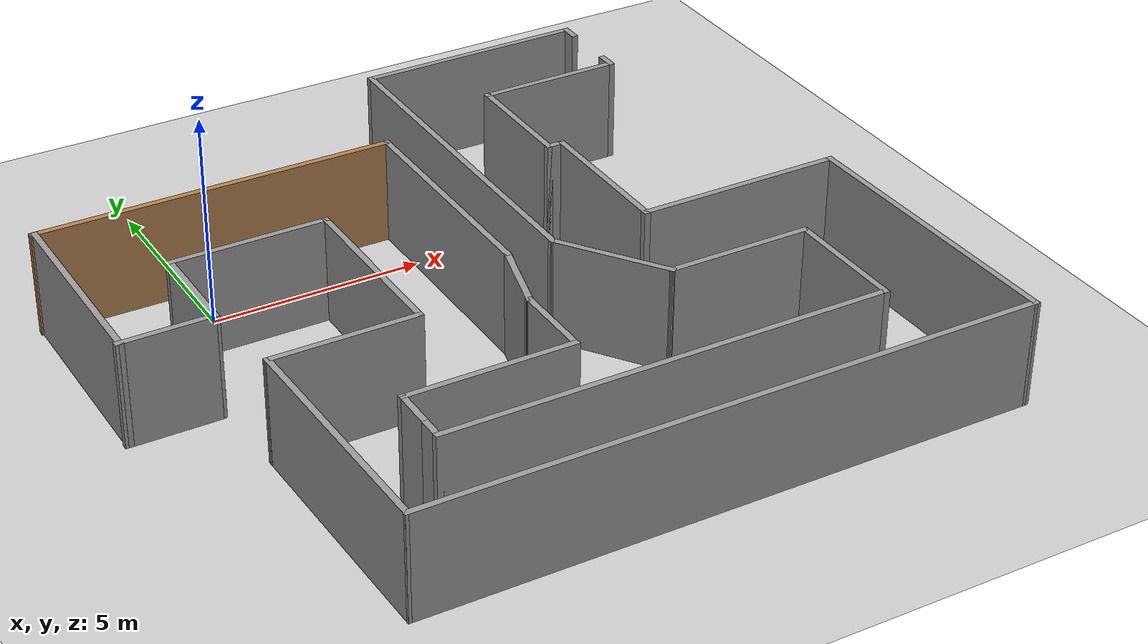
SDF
<sdf version="1.7">
 <world name="default">
  <light name="sun" type="directional">
   <pose>0 0 10 0 -0 0</pose>
   <diffuse>0.8 0.8 0.8 1</diffuse>
   <specular>0.2 0.2 0.2 1</specular>
   <attenuation>
    <range>1000</range>
    <constant>0.9</constant>
    <linear>0.01</linear>
    <quadratic>0.001</quadratic>
   </attenuation>
   <direction>-0.5 0.1 -0.9</direction>
   <spot><inner_angle>0</inner_angle><outer_angle>0</outer_angle><falloff>0</falloff></spot>
  </light>
  <model name="ground_plane">
   <static>1</static>
   <link name="link">
    <collision name="collision">
     <geometry><plane><normal>0 0 1</normal><size>100 100</size></plane></geometry>
     <surface>
      <contact><collide_bitmask>65535</collide_bitmask></contact>
      <friction><ode><mu>100</mu><mu2>50</mu2></ode></friction>
     </surface>
    </collision>
    <visual name="visual">
     <cast_shadows>0</cast_shadows>
     <geometry><plane><normal>0 0 1</normal><size>100 100</size></plane></geometry>
     <material>
      <script><uri>file://media/materials/scripts/gazebo.material</uri><name>Gazebo/Grey</name></script>
     </material>
    </visual>
   </link>
  </model>
  <gravity>0 0 -9.8</gravity>
  <magnetic_field>6e-06 2.3e-05 -4.2e-05</magnetic_field>
  <atmosphere type="adiabatic"/>
  <physics type="ode">
   <max_step_size>0.001</max_step_size>
   <real_time_factor>1</real_time_factor>
   <real_time_update_rate>1000</real_time_update_rate>
  </physics>
  <scene><ambient>0.4 0.4 0.4 1</ambient><background>0.7 0.7 0.7 1</background><shadows>1</shadows></scene>
  <spherical_coordinates>
   <surface_model>EARTH_WGS84</surface_model>
   <latitude_deg>0</latitude_deg>
   <longitude_deg>0</longitude_deg>
   <elevation>0</elevation>
   <heading_deg>0</heading_deg>
  </spherical_coordinates>
  <model name="laberynth1">
   <pose>5.01023 -3.41128 0 0 -0 0</pose>
   <link name="Wall_1">
    <collision name="Wall_1_Collision">
     <geometry><box><size>2.5 0.15 2.5</size></box></geometry>
     <pose>0 0 1.25 0 -0 0</pose>
    </collision>
    <visual name="Wall_1_Visual">
     <pose>0 0 1.25 0 -0 0</pose>
     <geometry><box><size>2.5 0.15 2.5</size></box></geometry>
     <material>
      <script><uri>file://media/materials/scripts/gazebo.material</uri><name>Gazebo/Grey</name></script>
      <ambient>1 1 1 1</ambient>
     </material>
     <meta><layer>0</layer></meta>
    </visual>
    <pose>-6.31022 1.14628 0 0 -0 1.5708</pose>
   </link>
   <link name="Wall_10">
    <collision name="Wall_10_Collision">
     <geometry><box><size>0.5 0.15 2.5</size></box></geometry>
     <pose>0 0 1.25 0 -0 0</pose>
    </collision>
    <visual name="Wall_10_Visual">
     <pose>0 0 1.25 0 -0 0</pose>
     <geometry><box><size>0.5 0.15 2.5</size></box></geometry>
     <material>
      <script><uri>file://media/materials/scripts/gazebo.material</uri><name>Gazebo/Grey</name></script>
      <ambient>1 1 1 1</ambient>
     </material>
     <meta><layer>0</layer></meta>
    </visual>
    <pose>3.26477 2.82129 0 0 -0 3.14159</pose>
   </link>
   <link name="Wall_11">
    <collision name="Wall_11_Collision">
     <geometry><box><size>3 0.15 2.5</size></box></geometry>
     <pose>0 0 1.25 0 -0 0</pose>
    </collision>
    <visual name="Wall_11_Visual">
     <pose>0 0 1.25 0 -0 0</pose>
     <geometry><box><size>3 0.15 2.5</size></box></geometry>
     <material>
      <script><uri>file://media/materials/scripts/gazebo.material</uri><name>Gazebo/Grey</name></script>
      <ambient>1 1 1 1</ambient>
     </material>
     <meta><layer>0</layer></meta>
    </visual>
    <pose>3.08977 4.24629 0 0 -0 1.5708</pose>
   </link>
   <link name="Wall_12">
    <collision name="Wall_12_Collision">
     <geometry><box><size>3.5 0.15 2.5</size></box></geometry>
     <pose>0 0 1.25 0 -0 0</pose>
    </collision>
    <visual name="Wall_12_Visual">
     <pose>0 0 1.25 0 -0 0</pose>
     <geometry><box><size>3.5 0.15 2.5</size></box></geometry>
     <material>
      <script><uri>file://media/materials/scripts/gazebo.material</uri><name>Gazebo/Grey</name></script>
      <ambient>1 1 1 1</ambient>
     </material>
     <meta><layer>0</layer></meta>
    </visual>
    <pose>4.76477 5.67129 0 0 -0 0</pose>
   </link>
   <link name="Wall_14">
    <collision name="Wall_14_Collision">
     <geometry><box><size>5.5 0.15 2.5</size></box></geometry>
     <pose>0 0 1.25 0 -0 0</pose>
    </collision>
    <visual name="Wall_14_Visual">
     <pose>0 0 1.25 0 -0 0</pose>
     <geometry><box><size>5.5 0.15 2.5</size></box></geometry>
     <material>
      <script><uri>file://media/materials/scripts/gazebo.material</uri><name>Gazebo/Grey</name></script>
      <ambient>1 1 1 1</ambient>
     </material>
     <meta><layer>0</layer></meta>
    </visual>
    <pose>3.76477 7.77128 0 0 -0 3.14159</pose>
   </link>
   <link name="Wall_15">
    <collision name="Wall_15_Collision">
     <geometry><box><size>8.75 0.15 2.5</size></box></geometry>
     <pose>0 0 1.25 0 -0 0</pose>
    </collision>
    <visual name="Wall_15_Visual">
     <pose>0 0 1.25 0 -0 0</pose>
     <geometry><box><size>8.75 0.15 2.5</size></box></geometry>
     <material>
      <script><uri>file://media/materials/scripts/gazebo.material</uri><name>Gazebo/Grey</name></script>
      <ambient>1 1 1 1</ambient>
     </material>
     <meta><layer>0</layer></meta>
    </visual>
    <pose>1.08977 3.47128 0 0 -0 -1.5708</pose>
   </link>
   <link name="Wall_17">
    <collision name="Wall_17_Collision">
     <geometry><box><size>5.75 0.15 2.5</size></box></geometry>
     <pose>0 0 1.25 0 -0 0</pose>
    </collision>
    <visual name="Wall_17_Visual">
     <pose>0 0 1.25 0 -0 0</pose>
     <geometry><box><size>5.75 0.15 2.5</size></box></geometry>
     <material>
      <script><uri>file://media/materials/scripts/gazebo.material</uri><name>Gazebo/Grey</name></script>
      <ambient>1 1 1 1</ambient>
     </material>
     <meta><layer>0</layer></meta>
    </visual>
    <pose>-0.010225 1.97128 0 0 -0 1.5708</pose>
   </link>
   <link name="Wall_18">
    <collision name="Wall_18_Collision">
     <geometry><box><size>8.55194 0.15 2.5</size></box></geometry>
     <pose>0 0 1.25 0 -0 0</pose>
    </collision>
    <visual name="Wall_18_Visual">
     <pose>0 0 1.25 0 -0 0</pose>
     <geometry><box><size>8.55194 0.15 2.5</size></box></geometry>
     <material>
      <script><uri>file://media/materials/scripts/gazebo.material</uri><name>Gazebo/Wood</name></script>
      <ambient>0.435294 0.796078 0.67451 1</ambient>
     </material>
     <meta><layer>0</layer></meta>
    </visual>
    <pose>-4.21115 4.79151 0 0 -0 3.13678</pose>
   </link>
   <link name="Wall_19">
    <collision name="Wall_19_Collision">
     <geometry><box><size>5 0.15 2.5</size></box></geometry>
     <pose>0 0 1.25 0 -0 0</pose>
    </collision>
    <visual name="Wall_19_Visual">
     <pose>0 0 1.25 0 -0 0</pose>
     <geometry><box><size>5 0.15 2.5</size></box></geometry>
     <material>
      <script><uri>file://media/materials/scripts/gazebo.material</uri><name>Gazebo/Grey</name></script>
      <ambient>1 1 1 1</ambient>
     </material>
     <meta><layer>0</layer></meta>
    </visual>
    <pose>-8.37162 2.38674 0 0 -0 -1.5708</pose>
   </link>
   <link name="Wall_2">
    <collision name="Wall_2_Collision">
     <geometry><box><size>3.75 0.15 2.5</size></box></geometry>
     <pose>0 0 1.25 0 -0 0</pose>
    </collision>
    <visual name="Wall_2_Visual">
     <pose>0 0 1.25 0 -0 0</pose>
     <geometry><box><size>3.75 0.15 2.5</size></box></geometry>
     <material>
      <script><uri>file://media/materials/scripts/gazebo.material</uri><name>Gazebo/Grey</name></script>
      <ambient>1 1 1 1</ambient>
     </material>
     <meta><layer>0</layer></meta>
    </visual>
    <pose>-4.51023 2.32129 0 0 -0 0</pose>
   </link>
   <link name="Wall_20">
    <collision name="Wall_20_Collision">
     <geometry><box><size>2.25187 0.15 2.5</size></box></geometry>
     <pose>0 0 1.25 0 -0 0</pose>
    </collision>
    <visual name="Wall_20_Visual">
     <pose>0 0 1.25 0 -0 0</pose>
     <geometry><box><size>2.25187 0.15 2.5</size></box></geometry>
     <material>
      <script><uri>file://media/materials/scripts/gazebo.material</uri><name>Gazebo/Grey</name></script>
      <ambient>1 1 1 1</ambient>
     </material>
     <meta><layer>0</layer></meta>
    </visual>
    <pose>-7.36115 -0.033487 0 0 -0 0.004541</pose>
   </link>
   <link name="Wall_22">
    <collision name="Wall_22_Collision">
     <geometry><box><size>2 0.15 2.5</size></box></geometry>
     <pose>0 0 1.25 0 -0 0</pose>
    </collision>
    <visual name="Wall_22_Visual">
     <pose>0 0 1.25 0 -0 0</pose>
     <geometry><box><size>2 0.15 2.5</size></box></geometry>
     <material>
      <script><uri>file://media/materials/scripts/gazebo.material</uri><name>Gazebo/Grey</name></script>
      <ambient>1 1 1 1</ambient>
     </material>
     <meta><layer>0</layer></meta>
    </visual>
    <pose>-0.249633 -1.7222 0 0 -0 -1.8326</pose>
   </link>
   <link name="Wall_24">
    <collision name="Wall_24_Collision">
     <geometry><box><size>2 0.15 2.5</size></box></geometry>
     <pose>0 0 1.25 0 -0 0</pose>
    </collision>
    <visual name="Wall_24_Visual">
     <pose>0 0 1.25 0 -0 0</pose>
     <geometry><box><size>2 0.15 2.5</size></box></geometry>
     <material>
      <script><uri>file://media/materials/scripts/gazebo.material</uri><name>Gazebo/Grey</name></script>
      <ambient>1 1 1 1</ambient>
     </material>
     <meta><layer>0</layer></meta>
    </visual>
    <pose>-0.48904 -3.54068 0 0 -0 -1.5708</pose>
   </link>
   <link name="Wall_25">
    <collision name="Wall_25_Collision">
     <geometry><box><size>4 0.15 2.5</size></box></geometry>
     <pose>0 0 1.25 0 -0 0</pose>
    </collision>
    <visual name="Wall_25_Visual">
     <pose>0 0 1.25 0 -0 0</pose>
     <geometry><box><size>4 0.15 2.5</size></box></geometry>
     <material>
      <script><uri>file://media/materials/scripts/gazebo.material</uri><name>Gazebo/Grey</name></script>
      <ambient>1 1 1 1</ambient>
     </material>
     <meta><layer>0</layer></meta>
    </visual>
    <pose>-2.41404 -4.46568 0 0 -0 3.14159</pose>
   </link>
   <link name="Wall_26">
    <collision name="Wall_26_Collision">
     <geometry><box><size>1 0.15 2.5</size></box></geometry>
     <pose>0 0 1.25 0 -0 0</pose>
    </collision>
    <visual name="Wall_26_Visual">
     <pose>0 0 1.25 0 -0 0</pose>
     <geometry><box><size>1 0.15 2.5</size></box></geometry>
     <material>
      <script><uri>file://media/materials/scripts/gazebo.material</uri><name>Gazebo/Grey</name></script>
      <ambient>1 1 1 1</ambient>
     </material>
     <meta><layer>0</layer></meta>
    </visual>
    <pose>-4.33904 -4.89068 0 0 -0 -1.5708</pose>
   </link>
   <link name="Wall_27">
    <collision name="Wall_27_Collision">
     <geometry><box><size>0.75 0.15 2.5</size></box></geometry>
     <pose>0 0 1.25 0 -0 0</pose>
    </collision>
    <visual name="Wall_27_Visual">
     <pose>0 0 1.25 0 -0 0</pose>
     <geometry><box><size>0.75 0.15 2.5</size></box></geometry>
     <material>
      <script><uri>file://media/materials/scripts/gazebo.material</uri><name>Gazebo/Grey</name></script>
      <ambient>1 1 1 1</ambient>
     </material>
     <meta><layer>0</layer></meta>
    </visual>
    <pose>-4.33904 -5.61568 0 0 -0 -1.5708</pose>
   </link>
   <link name="Wall_28">
    <collision name="Wall_28_Collision">
     <geometry><box><size>10.5 0.15 2.5</size></box></geometry>
     <pose>0 0 1.25 0 -0 0</pose>
    </collision>
    <visual name="Wall_28_Visual">
     <pose>0 0 1.25 0 -0 0</pose>
     <geometry><box><size>10.5 0.15 2.5</size></box></geometry>
     <material>
      <script><uri>file://media/materials/scripts/gazebo.material</uri><name>Gazebo/Grey</name></script>
      <ambient>1 1 1 1</ambient>
     </material>
     <meta><layer>0</layer></meta>
    </visual>
    <pose>0.835959 -5.91568 0 0 -0 0</pose>
   </link>
   <link name="Wall_29">
    <collision name="Wall_29_Collision">
     <geometry><box><size>3 0.15 2.5</size></box></geometry>
     <pose>0 0 1.25 0 -0 0</pose>
    </collision>
    <visual name="Wall_29_Visual">
     <pose>0 0 1.25 0 -0 0</pose>
     <geometry><box><size>3 0.15 2.5</size></box></geometry>
     <material>
      <script><uri>file://media/materials/scripts/gazebo.material</uri><name>Gazebo/Grey</name></script>
      <ambient>1 1 1 1</ambient>
     </material>
     <meta><layer>0</layer></meta>
    </visual>
    <pose>6.01096 -4.49068 0 0 -0 1.5708</pose>
   </link>
   <link name="Wall_3">
    <collision name="Wall_3_Collision">
     <geometry><box><size>4.5 0.15 2.5</size></box></geometry>
     <pose>0 0 1.25 0 -0 0</pose>
    </collision>
    <visual name="Wall_3_Visual">
     <pose>0 0 1.25 0 -0 0</pose>
     <geometry><box><size>4.5 0.15 2.5</size></box></geometry>
     <material>
      <script><uri>file://media/materials/scripts/gazebo.material</uri><name>Gazebo/Grey</name></script>
      <ambient>1 1 1 1</ambient>
     </material>
     <meta><layer>0</layer></meta>
    </visual>
    <pose>-2.71022 0.146285 0 0 -0 -1.5708</pose>
   </link>
   <link name="Wall_30">
    <collision name="Wall_30_Collision">
     <geometry><box><size>3.5 0.15 2.5</size></box></geometry>
     <pose>0 0 1.25 0 -0 0</pose>
    </collision>
    <visual name="Wall_30_Visual">
     <pose>0 0 1.25 0 -0 0</pose>
     <geometry><box><size>3.5 0.15 2.5</size></box></geometry>
     <material>
      <script><uri>file://media/materials/scripts/gazebo.material</uri><name>Gazebo/Grey</name></script>
      <ambient>1 1 1 1</ambient>
     </material>
     <meta><layer>0</layer></meta>
    </visual>
    <pose>4.33596 -3.06568 0 0 -0 3.14159</pose>
   </link>
   <link name="Wall_31">
    <collision name="Wall_31_Collision">
     <geometry><box><size>2.88361 0.15 2.5</size></box></geometry>
     <pose>0 0 1.25 0 -0 0</pose>
    </collision>
    <visual name="Wall_31_Visual">
     <pose>0 0 1.25 0 -0 0</pose>
     <geometry><box><size>2.88361 0.15 2.5</size></box></geometry>
     <material>
      <script><uri>file://media/materials/scripts/gazebo.material</uri><name>Gazebo/Grey</name></script>
      <ambient>1 1 1 1</ambient>
     </material>
     <meta><layer>0</layer></meta>
    </visual>
    <pose>1.87537 -1.9472 0 0 -0 2.18311</pose>
   </link>
   <link name="Wall_33">
    <collision name="Wall_33_Collision">
     <geometry><box><size>0.5 0.15 2.5</size></box></geometry>
     <pose>0 0 1.25 0 -0 0</pose>
    </collision>
    <visual name="Wall_33_Visual">
     <pose>0 0 1.25 0 -0 0</pose>
     <geometry><box><size>0.5 0.15 2.5</size></box></geometry>
     <material>
      <script><uri>file://media/materials/scripts/gazebo.material</uri><name>Gazebo/Grey</name></script>
      <ambient>1 1 1 1</ambient>
     </material>
     <meta><layer>0</layer></meta>
    </visual>
    <pose>6.43978 5.84628 0 0 -0 1.5708</pose>
   </link>
   <link name="Wall_35">
    <collision name="Wall_35_Collision">
     <geometry><box><size>0.5 0.15 2.5</size></box></geometry>
     <pose>0 0 1.25 0 -0 0</pose>
    </collision>
    <visual name="Wall_35_Visual">
     <pose>0 0 1.25 0 -0 0</pose>
     <geometry><box><size>0.5 0.15 2.5</size></box></geometry>
     <material>
      <script><uri>file://media/materials/scripts/gazebo.material</uri><name>Gazebo/Grey</name></script>
      <ambient>1 1 1 1</ambient>
     </material>
     <meta><layer>0</layer></meta>
    </visual>
    <pose>6.43978 7.59628 0 0 -0 -1.5708</pose>
   </link>
   <link name="Wall_4">
    <collision name="Wall_4_Collision">
     <geometry><box><size>3.5 0.15 2.5</size></box></geometry>
     <pose>0 0 1.25 0 -0 0</pose>
    </collision>
    <visual name="Wall_4_Visual">
     <pose>0 0 1.25 0 -0 0</pose>
     <geometry><box><size>3.5 0.15 2.5</size></box></geometry>
     <material>
      <script><uri>file://media/materials/scripts/gazebo.material</uri><name>Gazebo/Grey</name></script>
      <ambient>1 1 1 1</ambient>
     </material>
     <meta><layer>0</layer></meta>
    </visual>
    <pose>-4.38523 -2.02872 0 0 -0 3.14159</pose>
   </link>
   <link name="Wall_5">
    <collision name="Wall_5_Collision">
     <geometry><box><size>5.89229 0.15 2.5</size></box></geometry>
     <pose>0 0 1.25 0 -0 0</pose>
    </collision>
    <visual name="Wall_5_Visual">
     <pose>0 0 1.25 0 -0 0</pose>
     <geometry><box><size>5.89229 0.15 2.5</size></box></geometry>
     <material>
      <script><uri>file://media/materials/scripts/gazebo.material</uri><name>Gazebo/Grey</name></script>
      <ambient>1 1 1 1</ambient>
     </material>
     <meta><layer>0</layer></meta>
    </visual>
    <pose>-5.99954 -4.89922 0 0 -0 -1.54966</pose>
   </link>
   <link name="Wall_6">
    <collision name="Wall_6_Collision">
     <geometry><box><size>14.5 0.15 2.5</size></box></geometry>
     <pose>0 0 1.25 0 -0 0</pose>
    </collision>
    <visual name="Wall_6_Visual">
     <pose>0 0 1.25 0 -0 0</pose>
     <geometry><box><size>14.5 0.15 2.5</size></box></geometry>
     <material>
      <script><uri>file://media/materials/scripts/gazebo.material</uri><name>Gazebo/Grey</name></script>
      <ambient>1 1 1 1</ambient>
     </material>
     <meta><layer>0</layer></meta>
    </visual>
    <pose>1.23614 -7.76972 0 0 -0 0</pose>
   </link>
   <link name="Wall_7">
    <collision name="Wall_7_Collision">
     <geometry><box><size>7.14206 0.15 2.5</size></box></geometry>
     <pose>0 0 1.25 0 -0 0</pose>
    </collision>
    <visual name="Wall_7_Visual">
     <pose>0 0 1.25 0 -0 0</pose>
     <geometry><box><size>7.14206 0.15 2.5</size></box></geometry>
     <material>
      <script><uri>file://media/materials/scripts/gazebo.material</uri><name>Gazebo/Grey</name></script>
      <ambient>1 1 1 1</ambient>
     </material>
     <meta><layer>0</layer></meta>
    </visual>
    <pose>8.35046 -4.27422 0 0 -0 1.58815</pose>
   </link>
   <link name="Wall_8">
    <collision name="Wall_8_Collision">
     <geometry><box><size>5 0.15 2.5</size></box></geometry>
     <pose>0 0 1.25 0 -0 0</pose>
    </collision>
    <visual name="Wall_8_Visual">
     <pose>0 0 1.25 0 -0 0</pose>
     <geometry><box><size>5 0.15 2.5</size></box></geometry>
     <material>
      <script><uri>file://media/materials/scripts/gazebo.material</uri><name>Gazebo/Grey</name></script>
      <ambient>1 1 1 1</ambient>
     </material>
     <meta><layer>0</layer></meta>
    </visual>
    <pose>5.86477 -0.778715 0 0 -0 3.14159</pose>
   </link>
   <link name="Wall_9">
    <collision name="Wall_9_Collision">
     <geometry><box><size>3.75 0.15 2.5</size></box></geometry>
     <pose>0 0 1.25 0 -0 0</pose>
    </collision>
    <visual name="Wall_9_Visual">
     <pose>0 0 1.25 0 -0 0</pose>
     <geometry><box><size>3.75 0.15 2.5</size></box></geometry>
     <material>
      <script><uri>file://media/materials/scripts/gazebo.material</uri><name>Gazebo/Grey</name></script>
      <ambient>1 1 1 1</ambient>
     </material>
     <meta><layer>0</layer></meta>
    </visual>
    <pose>3.43978 1.02128 0 0 -0 1.5708</pose>
   </link>
   <static>1</static>
  </model>
 </world>
</sdf>
